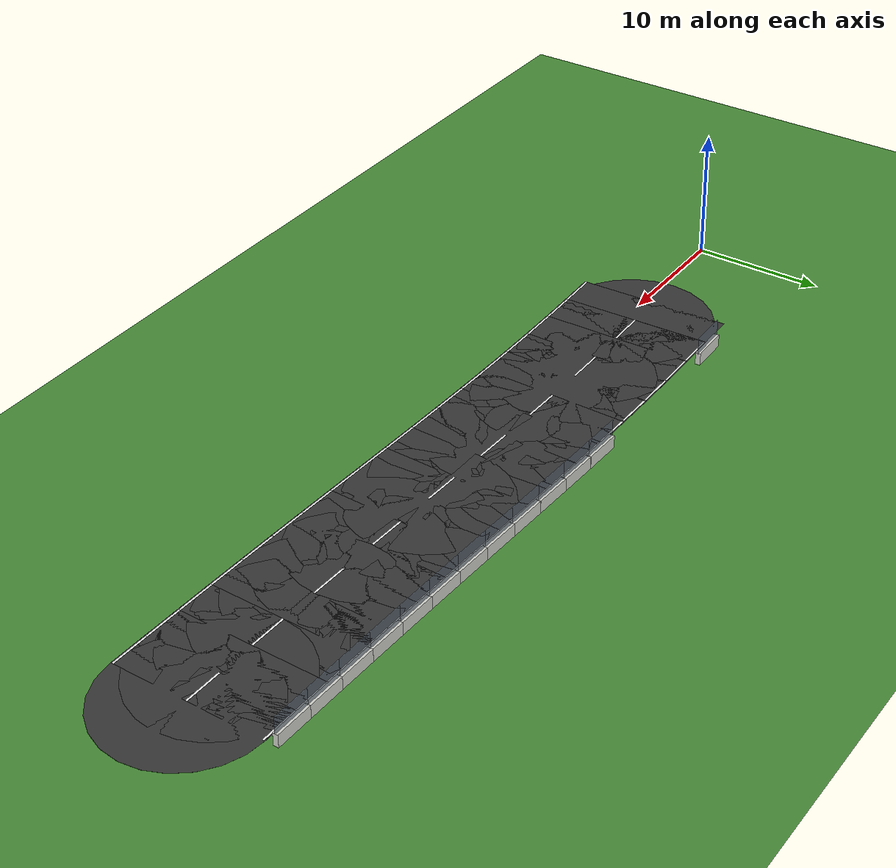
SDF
<sdf version="1.6">
 <world name="sem_silesia_ring_2026">
  <model name="ground_plane">
   <static>true</static>
   <link name="link">
    <collision name="collision">
     <geometry><plane><normal>0 0 1</normal><size>1200 1200</size></plane></geometry>
     <surface><friction><ode><mu>0.6</mu><mu2>0.6</mu2></ode></friction></surface>
    </collision>
    <visual name="visual">
     <geometry><plane><normal>0 0 1</normal><size>1200 1200</size></plane></geometry>
     <material><ambient>0.28 0.55 0.22 1</ambient><diffuse>0.28 0.55 0.22 1</diffuse></material>
    </visual>
   </link>
  </model>
  <model name="road_s3">
   <static>true</static>
   <pose>10.4648 0.7470 0.0030 0 0 0.0366</pose>
   <link name="link">
    <visual name="v">
     <geometry><box><size>3.0025 12.0000 0.0060</size></box></geometry>
     <material><ambient>0.22 0.22 0.22 1</ambient><diffuse>0.22 0.22 0.22 1</diffuse></material>
    </visual>
    <collision name="c">
     <geometry><box><size>3.0025 12.0000 0.0060</size></box></geometry>
     <surface><friction><ode><mu>0.9</mu><mu2>0.9</mu2></ode></friction></surface>
    </collision>
   </link>
  </model>
  <model name="wl_R_s3">
   <static>true</static>
   <pose>10.6787 -5.0991 0.0070 0 0 0.0366</pose>
   <link name="link">
    <visual name="v">
     <geometry><box><size>3.0025 0.1500 0.0080</size></box></geometry>
     <material><ambient>0.95 0.95 0.95 1</ambient><diffuse>0.95 0.95 0.95 1</diffuse></material>
    </visual>
   </link>
  </model>
  <model name="road_s4">
   <static>true</static>
   <pose>13.4657 0.8429 0.0030 0 0 0.0274</pose>
   <link name="link">
    <visual name="v">
     <geometry><box><size>3.0025 12.0000 0.0060</size></box></geometry>
     <material><ambient>0.22 0.22 0.22 1</ambient><diffuse>0.22 0.22 0.22 1</diffuse></material>
    </visual>
    <collision name="c">
     <geometry><box><size>3.0025 12.0000 0.0060</size></box></geometry>
     <surface><friction><ode><mu>0.9</mu><mu2>0.9</mu2></ode></friction></surface>
    </collision>
   </link>
  </model>
  <model name="road_jnt4">
   <static>true</static>
   <pose>11.9650 0.8019 0.0030 0 0 0</pose>
   <link name="link">
    <visual name="v">
     <geometry><cylinder><radius>6.0000</radius><length>0.0060</length></cylinder></geometry>
     <material><ambient>0.22 0.22 0.22 1</ambient><diffuse>0.22 0.22 0.22 1</diffuse></material>
    </visual>
    <collision name="c">
     <geometry><cylinder><radius>6.0000</radius><length>0.0060</length></cylinder></geometry>
     <surface><friction><ode><mu>0.9</mu><mu2>0.9</mu2></ode></friction></surface>
    </collision>
   </link>
  </model>
  <model name="wl_L_s4">
   <static>true</static>
   <pose>13.3056 6.6907 0.0070 0 0 0.0274</pose>
   <link name="link">
    <visual name="v">
     <geometry><box><size>3.0025 0.1500 0.0080</size></box></geometry>
     <material><ambient>0.95 0.95 0.95 1</ambient><diffuse>0.95 0.95 0.95 1</diffuse></material>
    </visual>
   </link>
  </model>
  <model name="wl_R_s4">
   <static>true</static>
   <pose>13.6258 -5.0049 0.0070 0 0 0.0274</pose>
   <link name="link">
    <visual name="v">
     <geometry><box><size>3.0025 0.1500 0.0080</size></box></geometry>
     <material><ambient>0.95 0.95 0.95 1</ambient><diffuse>0.95 0.95 0.95 1</diffuse></material>
    </visual>
   </link>
  </model>
  <model name="cd_s4">
   <static>true</static>
   <pose>13.4657 0.8429 0.0070 0 0 0.0274</pose>
   <link name="link">
    <visual name="v">
     <geometry><box><size>3.0025 0.1500 0.0080</size></box></geometry>
     <material><ambient>0.95 0.95 0.95 1</ambient><diffuse>0.95 0.95 0.95 1</diffuse></material>
    </visual>
   </link>
  </model>
  <model name="road_s5">
   <static>true</static>
   <pose>16.4675 0.9101 0.0030 0 0 0.0174</pose>
   <link name="link">
    <visual name="v">
     <geometry><box><size>3.0025 12.0000 0.0060</size></box></geometry>
     <material><ambient>0.22 0.22 0.22 1</ambient><diffuse>0.22 0.22 0.22 1</diffuse></material>
    </visual>
    <collision name="c">
     <geometry><box><size>3.0025 12.0000 0.0060</size></box></geometry>
     <surface><friction><ode><mu>0.9</mu><mu2>0.9</mu2></ode></friction></surface>
    </collision>
   </link>
  </model>
  <model name="road_jnt5">
   <static>true</static>
   <pose>14.9664 0.8840 0.0030 0 0 0</pose>
   <link name="link">
    <visual name="v">
     <geometry><cylinder><radius>6.0000</radius><length>0.0060</length></cylinder></geometry>
     <material><ambient>0.22 0.22 0.22 1</ambient><diffuse>0.22 0.22 0.22 1</diffuse></material>
    </visual>
    <collision name="c">
     <geometry><cylinder><radius>6.0000</radius><length>0.0060</length></cylinder></geometry>
     <surface><friction><ode><mu>0.9</mu><mu2>0.9</mu2></ode></friction></surface>
    </collision>
   </link>
  </model>
  <model name="wl_L_s5">
   <static>true</static>
   <pose>16.3660 6.7592 0.0070 0 0 0.0174</pose>
   <link name="link">
    <visual name="v">
     <geometry><box><size>3.0025 0.1500 0.0080</size></box></geometry>
     <material><ambient>0.95 0.95 0.95 1</ambient><diffuse>0.95 0.95 0.95 1</diffuse></material>
    </visual>
   </link>
  </model>
  <model name="wl_R_s5">
   <static>true</static>
   <pose>16.5690 -4.9390 0.0070 0 0 0.0174</pose>
   <link name="link">
    <visual name="v">
     <geometry><box><size>3.0025 0.1500 0.0080</size></box></geometry>
     <material><ambient>0.95 0.95 0.95 1</ambient><diffuse>0.95 0.95 0.95 1</diffuse></material>
    </visual>
   </link>
  </model>
  <model name="road_s6">
   <static>true</static>
   <pose>19.4697 0.9459 0.0030 0 0 0.0065</pose>
   <link name="link">
    <visual name="v">
     <geometry><box><size>3.0025 12.0000 0.0060</size></box></geometry>
     <material><ambient>0.22 0.22 0.22 1</ambient><diffuse>0.22 0.22 0.22 1</diffuse></material>
    </visual>
    <collision name="c">
     <geometry><box><size>3.0025 12.0000 0.0060</size></box></geometry>
     <surface><friction><ode><mu>0.9</mu><mu2>0.9</mu2></ode></friction></surface>
    </collision>
   </link>
  </model>
  <model name="road_jnt6">
   <static>true</static>
   <pose>17.9685 0.9361 0.0030 0 0 0</pose>
   <link name="link">
    <visual name="v">
     <geometry><cylinder><radius>6.0000</radius><length>0.0060</length></cylinder></geometry>
     <material><ambient>0.22 0.22 0.22 1</ambient><diffuse>0.22 0.22 0.22 1</diffuse></material>
    </visual>
    <collision name="c">
     <geometry><cylinder><radius>6.0000</radius><length>0.0060</length></cylinder></geometry>
     <surface><friction><ode><mu>0.9</mu><mu2>0.9</mu2></ode></friction></surface>
    </collision>
   </link>
  </model>
  <model name="wl_L_s6">
   <static>true</static>
   <pose>19.4317 6.7958 0.0070 0 0 0.0065</pose>
   <link name="link">
    <visual name="v">
     <geometry><box><size>3.0025 0.1500 0.0080</size></box></geometry>
     <material><ambient>0.95 0.95 0.95 1</ambient><diffuse>0.95 0.95 0.95 1</diffuse></material>
    </visual>
   </link>
  </model>
  <model name="wl_R_s6">
   <static>true</static>
   <pose>19.5078 -4.9040 0.0070 0 0 0.0065</pose>
   <link name="link">
    <visual name="v">
     <geometry><box><size>3.0025 0.1500 0.0080</size></box></geometry>
     <material><ambient>0.95 0.95 0.95 1</ambient><diffuse>0.95 0.95 0.95 1</diffuse></material>
    </visual>
   </link>
  </model>
  <model name="cd_s6">
   <static>true</static>
   <pose>19.4697 0.9459 0.0070 0 0 0.0065</pose>
   <link name="link">
    <visual name="v">
     <geometry><box><size>3.0025 0.1500 0.0080</size></box></geometry>
     <material><ambient>0.95 0.95 0.95 1</ambient><diffuse>0.95 0.95 0.95 1</diffuse></material>
    </visual>
   </link>
  </model>
  <model name="road_s7">
   <static>true</static>
   <pose>22.4722 0.9483 0.0030 0 0 -0.0049</pose>
   <link name="link">
    <visual name="v">
     <geometry><box><size>3.0025 12.0000 0.0060</size></box></geometry>
     <material><ambient>0.22 0.22 0.22 1</ambient><diffuse>0.22 0.22 0.22 1</diffuse></material>
    </visual>
    <collision name="c">
     <geometry><box><size>3.0025 12.0000 0.0060</size></box></geometry>
     <surface><friction><ode><mu>0.9</mu><mu2>0.9</mu2></ode></friction></surface>
    </collision>
   </link>
  </model>
  <model name="road_jnt7">
   <static>true</static>
   <pose>20.9710 0.9557 0.0030 0 0 0</pose>
   <link name="link">
    <visual name="v">
     <geometry><cylinder><radius>6.0000</radius><length>0.0060</length></cylinder></geometry>
     <material><ambient>0.22 0.22 0.22 1</ambient><diffuse>0.22 0.22 0.22 1</diffuse></material>
    </visual>
    <collision name="c">
     <geometry><cylinder><radius>6.0000</radius><length>0.0060</length></cylinder></geometry>
     <surface><friction><ode><mu>0.9</mu><mu2>0.9</mu2></ode></friction></surface>
    </collision>
   </link>
  </model>
  <model name="wl_L_s7">
   <static>true</static>
   <pose>22.5011 6.7982 0.0070 0 0 -0.0049</pose>
   <link name="link">
    <visual name="v">
     <geometry><box><size>3.0025 0.1500 0.0080</size></box></geometry>
     <material><ambient>0.95 0.95 0.95 1</ambient><diffuse>0.95 0.95 0.95 1</diffuse></material>
    </visual>
   </link>
  </model>
  <model name="wl_R_s7">
   <static>true</static>
   <pose>22.4433 -4.9017 0.0070 0 0 -0.0049</pose>
   <link name="link">
    <visual name="v">
     <geometry><box><size>3.0025 0.1500 0.0080</size></box></geometry>
     <material><ambient>0.95 0.95 0.95 1</ambient><diffuse>0.95 0.95 0.95 1</diffuse></material>
    </visual>
   </link>
  </model>
  <model name="road_s8">
   <static>true</static>
   <pose>25.4745 0.9180 0.0030 0 0 -0.0152</pose>
   <link name="link">
    <visual name="v">
     <geometry><box><size>3.0025 12.0000 0.0060</size></box></geometry>
     <material><ambient>0.22 0.22 0.22 1</ambient><diffuse>0.22 0.22 0.22 1</diffuse></material>
    </visual>
    <collision name="c">
     <geometry><box><size>3.0025 12.0000 0.0060</size></box></geometry>
     <surface><friction><ode><mu>0.9</mu><mu2>0.9</mu2></ode></friction></surface>
    </collision>
   </link>
  </model>
  <model name="road_jnt8">
   <static>true</static>
   <pose>23.9734 0.9408 0.0030 0 0 0</pose>
   <link name="link">
    <visual name="v">
     <geometry><cylinder><radius>6.0000</radius><length>0.0060</length></cylinder></geometry>
     <material><ambient>0.22 0.22 0.22 1</ambient><diffuse>0.22 0.22 0.22 1</diffuse></material>
    </visual>
    <collision name="c">
     <geometry><cylinder><radius>6.0000</radius><length>0.0060</length></cylinder></geometry>
     <surface><friction><ode><mu>0.9</mu><mu2>0.9</mu2></ode></friction></surface>
    </collision>
   </link>
  </model>
  <model name="wl_L_s8">
   <static>true</static>
   <pose>25.5634 6.7674 0.0070 0 0 -0.0152</pose>
   <link name="link">
    <visual name="v">
     <geometry><box><size>3.0025 0.1500 0.0080</size></box></geometry>
     <material><ambient>0.95 0.95 0.95 1</ambient><diffuse>0.95 0.95 0.95 1</diffuse></material>
    </visual>
   </link>
  </model>
  <model name="wl_R_s8">
   <static>true</static>
   <pose>25.3857 -4.9313 0.0070 0 0 -0.0152</pose>
   <link name="link">
    <visual name="v">
     <geometry><box><size>3.0025 0.1500 0.0080</size></box></geometry>
     <material><ambient>0.95 0.95 0.95 1</ambient><diffuse>0.95 0.95 0.95 1</diffuse></material>
    </visual>
   </link>
  </model>
  <model name="cd_s8">
   <static>true</static>
   <pose>25.4745 0.9180 0.0070 0 0 -0.0152</pose>
   <link name="link">
    <visual name="v">
     <geometry><box><size>3.0025 0.1500 0.0080</size></box></geometry>
     <material><ambient>0.95 0.95 0.95 1</ambient><diffuse>0.95 0.95 0.95 1</diffuse></material>
    </visual>
   </link>
  </model>
  <model name="road_s9">
   <static>true</static>
   <pose>28.4765 0.8600 0.0030 0 0 -0.0235</pose>
   <link name="link">
    <visual name="v">
     <geometry><box><size>3.0025 12.0000 0.0060</size></box></geometry>
     <material><ambient>0.22 0.22 0.22 1</ambient><diffuse>0.22 0.22 0.22 1</diffuse></material>
    </visual>
    <collision name="c">
     <geometry><box><size>3.0025 12.0000 0.0060</size></box></geometry>
     <surface><friction><ode><mu>0.9</mu><mu2>0.9</mu2></ode></friction></surface>
    </collision>
   </link>
  </model>
  <model name="road_jnt9">
   <static>true</static>
   <pose>26.9756 0.8953 0.0030 0 0 0</pose>
   <link name="link">
    <visual name="v">
     <geometry><cylinder><radius>6.0000</radius><length>0.0060</length></cylinder></geometry>
     <material><ambient>0.22 0.22 0.22 1</ambient><diffuse>0.22 0.22 0.22 1</diffuse></material>
    </visual>
    <collision name="c">
     <geometry><cylinder><radius>6.0000</radius><length>0.0060</length></cylinder></geometry>
     <surface><friction><ode><mu>0.9</mu><mu2>0.9</mu2></ode></friction></surface>
    </collision>
   </link>
  </model>
  <model name="wl_L_s9">
   <static>true</static>
   <pose>28.6138 6.7084 0.0070 0 0 -0.0235</pose>
   <link name="link">
    <visual name="v">
     <geometry><box><size>3.0025 0.1500 0.0080</size></box></geometry>
     <material><ambient>0.95 0.95 0.95 1</ambient><diffuse>0.95 0.95 0.95 1</diffuse></material>
    </visual>
   </link>
  </model>
  <model name="wl_R_s9">
   <static>true</static>
   <pose>28.3391 -4.9884 0.0070 0 0 -0.0235</pose>
   <link name="link">
    <visual name="v">
     <geometry><box><size>3.0025 0.1500 0.0080</size></box></geometry>
     <material><ambient>0.95 0.95 0.95 1</ambient><diffuse>0.95 0.95 0.95 1</diffuse></material>
    </visual>
   </link>
  </model>
  <model name="road_s10">
   <static>true</static>
   <pose>31.4779 0.7800 0.0030 0 0 -0.0298</pose>
   <link name="link">
    <visual name="v">
     <geometry><box><size>3.0025 12.0000 0.0060</size></box></geometry>
     <material><ambient>0.22 0.22 0.22 1</ambient><diffuse>0.22 0.22 0.22 1</diffuse></material>
    </visual>
    <collision name="c">
     <geometry><box><size>3.0025 12.0000 0.0060</size></box></geometry>
     <surface><friction><ode><mu>0.9</mu><mu2>0.9</mu2></ode></friction></surface>
    </collision>
   </link>
  </model>
  <model name="road_jnt10">
   <static>true</static>
   <pose>29.9773 0.8248 0.0030 0 0 0</pose>
   <link name="link">
    <visual name="v">
     <geometry><cylinder><radius>6.0000</radius><length>0.0060</length></cylinder></geometry>
     <material><ambient>0.22 0.22 0.22 1</ambient><diffuse>0.22 0.22 0.22 1</diffuse></material>
    </visual>
    <collision name="c">
     <geometry><cylinder><radius>6.0000</radius><length>0.0060</length></cylinder></geometry>
     <surface><friction><ode><mu>0.9</mu><mu2>0.9</mu2></ode></friction></surface>
    </collision>
   </link>
  </model>
  <model name="wl_L_s10">
   <static>true</static>
   <pose>31.6522 6.6274 0.0070 0 0 -0.0298</pose>
   <link name="link">
    <visual name="v">
     <geometry><box><size>3.0025 0.1500 0.0080</size></box></geometry>
     <material><ambient>0.95 0.95 0.95 1</ambient><diffuse>0.95 0.95 0.95 1</diffuse></material>
    </visual>
   </link>
  </model>
  <model name="wl_R_s10">
   <static>true</static>
   <pose>31.3036 -5.0674 0.0070 0 0 -0.0298</pose>
   <link name="link">
    <visual name="v">
     <geometry><box><size>3.0025 0.1500 0.0080</size></box></geometry>
     <material><ambient>0.95 0.95 0.95 1</ambient><diffuse>0.95 0.95 0.95 1</diffuse></material>
    </visual>
   </link>
  </model>
  <model name="cd_s10">
   <static>true</static>
   <pose>31.4779 0.7800 0.0070 0 0 -0.0298</pose>
   <link name="link">
    <visual name="v">
     <geometry><box><size>3.0025 0.1500 0.0080</size></box></geometry>
     <material><ambient>0.95 0.95 0.95 1</ambient><diffuse>0.95 0.95 0.95 1</diffuse></material>
    </visual>
   </link>
  </model>
  <model name="road_s11">
   <static>true</static>
   <pose>34.4789 0.6841 0.0030 0 0 -0.0341</pose>
   <link name="link">
    <visual name="v">
     <geometry><box><size>3.0025 12.0000 0.0060</size></box></geometry>
     <material><ambient>0.22 0.22 0.22 1</ambient><diffuse>0.22 0.22 0.22 1</diffuse></material>
    </visual>
    <collision name="c">
     <geometry><box><size>3.0025 12.0000 0.0060</size></box></geometry>
     <surface><friction><ode><mu>0.9</mu><mu2>0.9</mu2></ode></friction></surface>
    </collision>
   </link>
  </model>
  <model name="road_jnt11">
   <static>true</static>
   <pose>32.9785 0.7353 0.0030 0 0 0</pose>
   <link name="link">
    <visual name="v">
     <geometry><cylinder><radius>6.0000</radius><length>0.0060</length></cylinder></geometry>
     <material><ambient>0.22 0.22 0.22 1</ambient><diffuse>0.22 0.22 0.22 1</diffuse></material>
    </visual>
    <collision name="c">
     <geometry><cylinder><radius>6.0000</radius><length>0.0060</length></cylinder></geometry>
     <surface><friction><ode><mu>0.9</mu><mu2>0.9</mu2></ode></friction></surface>
    </collision>
   </link>
  </model>
  <model name="wl_L_s11">
   <static>true</static>
   <pose>34.6785 6.5307 0.0070 0 0 -0.0341</pose>
   <link name="link">
    <visual name="v">
     <geometry><box><size>3.0025 0.1500 0.0080</size></box></geometry>
     <material><ambient>0.95 0.95 0.95 1</ambient><diffuse>0.95 0.95 0.95 1</diffuse></material>
    </visual>
   </link>
  </model>
  <model name="wl_R_s11">
   <static>true</static>
   <pose>34.2794 -5.1625 0.0070 0 0 -0.0341</pose>
   <link name="link">
    <visual name="v">
     <geometry><box><size>3.0025 0.1500 0.0080</size></box></geometry>
     <material><ambient>0.95 0.95 0.95 1</ambient><diffuse>0.95 0.95 0.95 1</diffuse></material>
    </visual>
   </link>
  </model>
  <model name="road_s12">
   <static>true</static>
   <pose>37.4796 0.5782 0.0030 0 0 -0.0365</pose>
   <link name="link">
    <visual name="v">
     <geometry><box><size>3.0025 12.0000 0.0060</size></box></geometry>
     <material><ambient>0.22 0.22 0.22 1</ambient><diffuse>0.22 0.22 0.22 1</diffuse></material>
    </visual>
    <collision name="c">
     <geometry><box><size>3.0025 12.0000 0.0060</size></box></geometry>
     <surface><friction><ode><mu>0.9</mu><mu2>0.9</mu2></ode></friction></surface>
    </collision>
   </link>
  </model>
  <model name="road_jnt12">
   <static>true</static>
   <pose>35.9793 0.6329 0.0030 0 0 0</pose>
   <link name="link">
    <visual name="v">
     <geometry><cylinder><radius>6.0000</radius><length>0.0060</length></cylinder></geometry>
     <material><ambient>0.22 0.22 0.22 1</ambient><diffuse>0.22 0.22 0.22 1</diffuse></material>
    </visual>
    <collision name="c">
     <geometry><cylinder><radius>6.0000</radius><length>0.0060</length></cylinder></geometry>
     <surface><friction><ode><mu>0.9</mu><mu2>0.9</mu2></ode></friction></surface>
    </collision>
   </link>
  </model>
  <model name="wl_L_s12">
   <static>true</static>
   <pose>37.6928 6.4243 0.0070 0 0 -0.0365</pose>
   <link name="link">
    <visual name="v">
     <geometry><box><size>3.0025 0.1500 0.0080</size></box></geometry>
     <material><ambient>0.95 0.95 0.95 1</ambient><diffuse>0.95 0.95 0.95 1</diffuse></material>
    </visual>
   </link>
  </model>
  <model name="wl_R_s12">
   <static>true</static>
   <pose>37.2664 -5.2680 0.0070 0 0 -0.0365</pose>
   <link name="link">
    <visual name="v">
     <geometry><box><size>3.0025 0.1500 0.0080</size></box></geometry>
     <material><ambient>0.95 0.95 0.95 1</ambient><diffuse>0.95 0.95 0.95 1</diffuse></material>
    </visual>
   </link>
  </model>
  <model name="cd_s12">
   <static>true</static>
   <pose>37.4796 0.5782 0.0070 0 0 -0.0365</pose>
   <link name="link">
    <visual name="v">
     <geometry><box><size>3.0025 0.1500 0.0080</size></box></geometry>
     <material><ambient>0.95 0.95 0.95 1</ambient><diffuse>0.95 0.95 0.95 1</diffuse></material>
    </visual>
   </link>
  </model>
  <model name="road_s13">
   <static>true</static>
   <pose>40.4801 0.4682 0.0030 0 0 -0.0368</pose>
   <link name="link">
    <visual name="v">
     <geometry><box><size>3.0025 12.0000 0.0060</size></box></geometry>
     <material><ambient>0.22 0.22 0.22 1</ambient><diffuse>0.22 0.22 0.22 1</diffuse></material>
    </visual>
    <collision name="c">
     <geometry><box><size>3.0025 12.0000 0.0060</size></box></geometry>
     <surface><friction><ode><mu>0.9</mu><mu2>0.9</mu2></ode></friction></surface>
    </collision>
   </link>
  </model>
  <model name="road_jnt13">
   <static>true</static>
   <pose>38.9799 0.5234 0.0030 0 0 0</pose>
   <link name="link">
    <visual name="v">
     <geometry><cylinder><radius>6.0000</radius><length>0.0060</length></cylinder></geometry>
     <material><ambient>0.22 0.22 0.22 1</ambient><diffuse>0.22 0.22 0.22 1</diffuse></material>
    </visual>
    <collision name="c">
     <geometry><cylinder><radius>6.0000</radius><length>0.0060</length></cylinder></geometry>
     <surface><friction><ode><mu>0.9</mu><mu2>0.9</mu2></ode></friction></surface>
    </collision>
   </link>
  </model>
  <model name="wl_L_s13">
   <static>true</static>
   <pose>40.6954 6.3142 0.0070 0 0 -0.0368</pose>
   <link name="link">
    <visual name="v">
     <geometry><box><size>3.0025 0.1500 0.0080</size></box></geometry>
     <material><ambient>0.95 0.95 0.95 1</ambient><diffuse>0.95 0.95 0.95 1</diffuse></material>
    </visual>
   </link>
  </model>
  <model name="wl_R_s13">
   <static>true</static>
   <pose>40.2648 -5.3778 0.0070 0 0 -0.0368</pose>
   <link name="link">
    <visual name="v">
     <geometry><box><size>3.0025 0.1500 0.0080</size></box></geometry>
     <material><ambient>0.95 0.95 0.95 1</ambient><diffuse>0.95 0.95 0.95 1</diffuse></material>
    </visual>
   </link>
  </model>
  <model name="road_s14">
   <static>true</static>
   <pose>43.4807 0.3602 0.0030 0 0 -0.0352</pose>
   <link name="link">
    <visual name="v">
     <geometry><box><size>3.0025 12.0000 0.0060</size></box></geometry>
     <material><ambient>0.22 0.22 0.22 1</ambient><diffuse>0.22 0.22 0.22 1</diffuse></material>
    </visual>
    <collision name="c">
     <geometry><box><size>3.0025 12.0000 0.0060</size></box></geometry>
     <surface><friction><ode><mu>0.9</mu><mu2>0.9</mu2></ode></friction></surface>
    </collision>
   </link>
  </model>
  <model name="road_jnt14">
   <static>true</static>
   <pose>41.9804 0.4130 0.0030 0 0 0</pose>
   <link name="link">
    <visual name="v">
     <geometry><cylinder><radius>6.0000</radius><length>0.0060</length></cylinder></geometry>
     <material><ambient>0.22 0.22 0.22 1</ambient><diffuse>0.22 0.22 0.22 1</diffuse></material>
    </visual>
    <collision name="c">
     <geometry><cylinder><radius>6.0000</radius><length>0.0060</length></cylinder></geometry>
     <surface><friction><ode><mu>0.9</mu><mu2>0.9</mu2></ode></friction></surface>
    </collision>
   </link>
  </model>
  <model name="wl_L_s14">
   <static>true</static>
   <pose>43.6865 6.2065 0.0070 0 0 -0.0352</pose>
   <link name="link">
    <visual name="v">
     <geometry><box><size>3.0025 0.1500 0.0080</size></box></geometry>
     <material><ambient>0.95 0.95 0.95 1</ambient><diffuse>0.95 0.95 0.95 1</diffuse></material>
    </visual>
   </link>
  </model>
  <model name="wl_R_s14">
   <static>true</static>
   <pose>43.2749 -5.4862 0.0070 0 0 -0.0352</pose>
   <link name="link">
    <visual name="v">
     <geometry><box><size>3.0025 0.1500 0.0080</size></box></geometry>
     <material><ambient>0.95 0.95 0.95 1</ambient><diffuse>0.95 0.95 0.95 1</diffuse></material>
    </visual>
   </link>
  </model>
  <model name="cd_s14">
   <static>true</static>
   <pose>43.4807 0.3602 0.0070 0 0 -0.0352</pose>
   <link name="link">
    <visual name="v">
     <geometry><box><size>3.0025 0.1500 0.0080</size></box></geometry>
     <material><ambient>0.95 0.95 0.95 1</ambient><diffuse>0.95 0.95 0.95 1</diffuse></material>
    </visual>
   </link>
  </model>
  <model name="road_s15">
   <static>true</static>
   <pose>46.4815 0.2595 0.0030 0 0 -0.0319</pose>
   <link name="link">
    <visual name="v">
     <geometry><box><size>3.0025 12.0000 0.0060</size></box></geometry>
     <material><ambient>0.22 0.22 0.22 1</ambient><diffuse>0.22 0.22 0.22 1</diffuse></material>
    </visual>
    <collision name="c">
     <geometry><box><size>3.0025 12.0000 0.0060</size></box></geometry>
     <surface><friction><ode><mu>0.9</mu><mu2>0.9</mu2></ode></friction></surface>
    </collision>
   </link>
  </model>
  <model name="road_jnt15">
   <static>true</static>
   <pose>44.9810 0.3073 0.0030 0 0 0</pose>
   <link name="link">
    <visual name="v">
     <geometry><cylinder><radius>6.0000</radius><length>0.0060</length></cylinder></geometry>
     <material><ambient>0.22 0.22 0.22 1</ambient><diffuse>0.22 0.22 0.22 1</diffuse></material>
    </visual>
    <collision name="c">
     <geometry><cylinder><radius>6.0000</radius><length>0.0060</length></cylinder></geometry>
     <surface><friction><ode><mu>0.9</mu><mu2>0.9</mu2></ode></friction></surface>
    </collision>
   </link>
  </model>
  <model name="wl_L_s15">
   <static>true</static>
   <pose>46.6679 6.1066 0.0070 0 0 -0.0319</pose>
   <link name="link">
    <visual name="v">
     <geometry><box><size>3.0025 0.1500 0.0080</size></box></geometry>
     <material><ambient>0.95 0.95 0.95 1</ambient><diffuse>0.95 0.95 0.95 1</diffuse></material>
    </visual>
   </link>
  </model>
  <model name="wl_R_s15">
   <static>true</static>
   <pose>46.2952 -5.5875 0.0070 0 0 -0.0319</pose>
   <link name="link">
    <visual name="v">
     <geometry><box><size>3.0025 0.1500 0.0080</size></box></geometry>
     <material><ambient>0.95 0.95 0.95 1</ambient><diffuse>0.95 0.95 0.95 1</diffuse></material>
    </visual>
   </link>
  </model>
  <model name="road_s16">
   <static>true</static>
   <pose>49.4827 0.1691 0.0030 0 0 -0.0284</pose>
   <link name="link">
    <visual name="v">
     <geometry><box><size>3.0025 12.0000 0.0060</size></box></geometry>
     <material><ambient>0.22 0.22 0.22 1</ambient><diffuse>0.22 0.22 0.22 1</diffuse></material>
    </visual>
    <collision name="c">
     <geometry><box><size>3.0025 12.0000 0.0060</size></box></geometry>
     <surface><friction><ode><mu>0.9</mu><mu2>0.9</mu2></ode></friction></surface>
    </collision>
   </link>
  </model>
  <model name="road_jnt16">
   <static>true</static>
   <pose>47.9820 0.2117 0.0030 0 0 0</pose>
   <link name="link">
    <visual name="v">
     <geometry><cylinder><radius>6.0000</radius><length>0.0060</length></cylinder></geometry>
     <material><ambient>0.22 0.22 0.22 1</ambient><diffuse>0.22 0.22 0.22 1</diffuse></material>
    </visual>
    <collision name="c">
     <geometry><cylinder><radius>6.0000</radius><length>0.0060</length></cylinder></geometry>
     <surface><friction><ode><mu>0.9</mu><mu2>0.9</mu2></ode></friction></surface>
    </collision>
   </link>
  </model>
  <model name="wl_L_s16">
   <static>true</static>
   <pose>49.6488 6.0167 0.0070 0 0 -0.0284</pose>
   <link name="link">
    <visual name="v">
     <geometry><box><size>3.0025 0.1500 0.0080</size></box></geometry>
     <material><ambient>0.95 0.95 0.95 1</ambient><diffuse>0.95 0.95 0.95 1</diffuse></material>
    </visual>
   </link>
  </model>
  <model name="wl_R_s16">
   <static>true</static>
   <pose>49.3167 -5.6786 0.0070 0 0 -0.0284</pose>
   <link name="link">
    <visual name="v">
     <geometry><box><size>3.0025 0.1500 0.0080</size></box></geometry>
     <material><ambient>0.95 0.95 0.95 1</ambient><diffuse>0.95 0.95 0.95 1</diffuse></material>
    </visual>
   </link>
  </model>
  <model name="cd_s16">
   <static>true</static>
   <pose>49.4827 0.1691 0.0070 0 0 -0.0284</pose>
   <link name="link">
    <visual name="v">
     <geometry><box><size>3.0025 0.1500 0.0080</size></box></geometry>
     <material><ambient>0.95 0.95 0.95 1</ambient><diffuse>0.95 0.95 0.95 1</diffuse></material>
    </visual>
   </link>
  </model>
  <model name="road_s17">
   <static>true</static>
   <pose>52.4842 0.0885 0.0030 0 0 -0.0253</pose>
   <link name="link">
    <visual name="v">
     <geometry><box><size>3.0025 12.0000 0.0060</size></box></geometry>
     <material><ambient>0.22 0.22 0.22 1</ambient><diffuse>0.22 0.22 0.22 1</diffuse></material>
    </visual>
    <collision name="c">
     <geometry><box><size>3.0025 12.0000 0.0060</size></box></geometry>
     <surface><friction><ode><mu>0.9</mu><mu2>0.9</mu2></ode></friction></surface>
    </collision>
   </link>
  </model>
  <model name="road_jnt17">
   <static>true</static>
   <pose>50.9834 0.1265 0.0030 0 0 0</pose>
   <link name="link">
    <visual name="v">
     <geometry><cylinder><radius>6.0000</radius><length>0.0060</length></cylinder></geometry>
     <material><ambient>0.22 0.22 0.22 1</ambient><diffuse>0.22 0.22 0.22 1</diffuse></material>
    </visual>
    <collision name="c">
     <geometry><cylinder><radius>6.0000</radius><length>0.0060</length></cylinder></geometry>
     <surface><friction><ode><mu>0.9</mu><mu2>0.9</mu2></ode></friction></surface>
    </collision>
   </link>
  </model>
  <model name="wl_L_s17">
   <static>true</static>
   <pose>52.6322 5.9366 0.0070 0 0 -0.0253</pose>
   <link name="link">
    <visual name="v">
     <geometry><box><size>3.0025 0.1500 0.0080</size></box></geometry>
     <material><ambient>0.95 0.95 0.95 1</ambient><diffuse>0.95 0.95 0.95 1</diffuse></material>
    </visual>
   </link>
  </model>
  <model name="wl_R_s17">
   <static>true</static>
   <pose>52.3361 -5.7597 0.0070 0 0 -0.0253</pose>
   <link name="link">
    <visual name="v">
     <geometry><box><size>3.0025 0.1500 0.0080</size></box></geometry>
     <material><ambient>0.95 0.95 0.95 1</ambient><diffuse>0.95 0.95 0.95 1</diffuse></material>
    </visual>
   </link>
  </model>
  <model name="road_s18">
   <static>true</static>
   <pose>55.4858 0.0165 0.0030 0 0 -0.0226</pose>
   <link name="link">
    <visual name="v">
     <geometry><box><size>3.0025 12.0000 0.0060</size></box></geometry>
     <material><ambient>0.22 0.22 0.22 1</ambient><diffuse>0.22 0.22 0.22 1</diffuse></material>
    </visual>
    <collision name="c">
     <geometry><box><size>3.0025 12.0000 0.0060</size></box></geometry>
     <surface><friction><ode><mu>0.9</mu><mu2>0.9</mu2></ode></friction></surface>
    </collision>
   </link>
  </model>
  <model name="road_jnt18">
   <static>true</static>
   <pose>53.9849 0.0505 0.0030 0 0 0</pose>
   <link name="link">
    <visual name="v">
     <geometry><cylinder><radius>6.0000</radius><length>0.0060</length></cylinder></geometry>
     <material><ambient>0.22 0.22 0.22 1</ambient><diffuse>0.22 0.22 0.22 1</diffuse></material>
    </visual>
    <collision name="c">
     <geometry><cylinder><radius>6.0000</radius><length>0.0060</length></cylinder></geometry>
     <surface><friction><ode><mu>0.9</mu><mu2>0.9</mu2></ode></friction></surface>
    </collision>
   </link>
  </model>
  <model name="wl_L_s18">
   <static>true</static>
   <pose>55.6182 5.8650 0.0070 0 0 -0.0226</pose>
   <link name="link">
    <visual name="v">
     <geometry><box><size>3.0025 0.1500 0.0080</size></box></geometry>
     <material><ambient>0.95 0.95 0.95 1</ambient><diffuse>0.95 0.95 0.95 1</diffuse></material>
    </visual>
   </link>
  </model>
  <model name="wl_R_s18">
   <static>true</static>
   <pose>55.3534 -5.8320 0.0070 0 0 -0.0226</pose>
   <link name="link">
    <visual name="v">
     <geometry><box><size>3.0025 0.1500 0.0080</size></box></geometry>
     <material><ambient>0.95 0.95 0.95 1</ambient><diffuse>0.95 0.95 0.95 1</diffuse></material>
    </visual>
   </link>
  </model>
  <model name="cd_s18">
   <static>true</static>
   <pose>55.4858 0.0165 0.0070 0 0 -0.0226</pose>
   <link name="link">
    <visual name="v">
     <geometry><box><size>3.0025 0.1500 0.0080</size></box></geometry>
     <material><ambient>0.95 0.95 0.95 1</ambient><diffuse>0.95 0.95 0.95 1</diffuse></material>
    </visual>
   </link>
  </model>
  <model name="road_s19">
   <static>true</static>
   <pose>58.4877 -0.0480 0.0030 0 0 -0.0203</pose>
   <link name="link">
    <visual name="v">
     <geometry><box><size>3.0025 12.0000 0.0060</size></box></geometry>
     <material><ambient>0.22 0.22 0.22 1</ambient><diffuse>0.22 0.22 0.22 1</diffuse></material>
    </visual>
    <collision name="c">
     <geometry><box><size>3.0025 12.0000 0.0060</size></box></geometry>
     <surface><friction><ode><mu>0.9</mu><mu2>0.9</mu2></ode></friction></surface>
    </collision>
   </link>
  </model>
  <model name="road_jnt19">
   <static>true</static>
   <pose>56.9867 -0.0175 0.0030 0 0 0</pose>
   <link name="link">
    <visual name="v">
     <geometry><cylinder><radius>6.0000</radius><length>0.0060</length></cylinder></geometry>
     <material><ambient>0.22 0.22 0.22 1</ambient><diffuse>0.22 0.22 0.22 1</diffuse></material>
    </visual>
    <collision name="c">
     <geometry><cylinder><radius>6.0000</radius><length>0.0060</length></cylinder></geometry>
     <surface><friction><ode><mu>0.9</mu><mu2>0.9</mu2></ode></friction></surface>
    </collision>
   </link>
  </model>
  <model name="wl_L_s19">
   <static>true</static>
   <pose>58.6067 5.8008 0.0070 0 0 -0.0203</pose>
   <link name="link">
    <visual name="v">
     <geometry><box><size>3.0025 0.1500 0.0080</size></box></geometry>
     <material><ambient>0.95 0.95 0.95 1</ambient><diffuse>0.95 0.95 0.95 1</diffuse></material>
    </visual>
   </link>
  </model>
  <model name="wl_R_s19">
   <static>true</static>
   <pose>58.3687 -5.8968 0.0070 0 0 -0.0203</pose>
   <link name="link">
    <visual name="v">
     <geometry><box><size>3.0025 0.1500 0.0080</size></box></geometry>
     <material><ambient>0.95 0.95 0.95 1</ambient><diffuse>0.95 0.95 0.95 1</diffuse></material>
    </visual>
   </link>
  </model>
  <model name="road_s20">
   <static>true</static>
   <pose>61.4896 -0.1063 0.0030 0 0 -0.0184</pose>
   <link name="link">
    <visual name="v">
     <geometry><box><size>3.0025 12.0000 0.0060</size></box></geometry>
     <material><ambient>0.22 0.22 0.22 1</ambient><diffuse>0.22 0.22 0.22 1</diffuse></material>
    </visual>
    <collision name="c">
     <geometry><box><size>3.0025 12.0000 0.0060</size></box></geometry>
     <surface><friction><ode><mu>0.9</mu><mu2>0.9</mu2></ode></friction></surface>
    </collision>
   </link>
  </model>
  <model name="road_jnt20">
   <static>true</static>
   <pose>59.9886 -0.0786 0.0030 0 0 0</pose>
   <link name="link">
    <visual name="v">
     <geometry><cylinder><radius>6.0000</radius><length>0.0060</length></cylinder></geometry>
     <material><ambient>0.22 0.22 0.22 1</ambient><diffuse>0.22 0.22 0.22 1</diffuse></material>
    </visual>
    <collision name="c">
     <geometry><cylinder><radius>6.0000</radius><length>0.0060</length></cylinder></geometry>
     <surface><friction><ode><mu>0.9</mu><mu2>0.9</mu2></ode></friction></surface>
    </collision>
   </link>
  </model>
  <model name="wl_L_s20">
   <static>true</static>
   <pose>61.5975 5.7427 0.0070 0 0 -0.0184</pose>
   <link name="link">
    <visual name="v">
     <geometry><box><size>3.0025 0.1500 0.0080</size></box></geometry>
     <material><ambient>0.95 0.95 0.95 1</ambient><diffuse>0.95 0.95 0.95 1</diffuse></material>
    </visual>
   </link>
  </model>
  <model name="wl_R_s20">
   <static>true</static>
   <pose>61.3818 -5.9553 0.0070 0 0 -0.0184</pose>
   <link name="link">
    <visual name="v">
     <geometry><box><size>3.0025 0.1500 0.0080</size></box></geometry>
     <material><ambient>0.95 0.95 0.95 1</ambient><diffuse>0.95 0.95 0.95 1</diffuse></material>
    </visual>
   </link>
  </model>
  <model name="cd_s20">
   <static>true</static>
   <pose>61.4896 -0.1063 0.0070 0 0 -0.0184</pose>
   <link name="link">
    <visual name="v">
     <geometry><box><size>3.0025 0.1500 0.0080</size></box></geometry>
     <material><ambient>0.95 0.95 0.95 1</ambient><diffuse>0.95 0.95 0.95 1</diffuse></material>
    </visual>
   </link>
  </model>
  <model name="road_jnt21">
   <static>true</static>
   <pose>62.9907 -0.1339 0.0030 0 0 0</pose>
   <link name="link">
    <visual name="v">
     <geometry><cylinder><radius>6.0000</radius><length>0.0060</length></cylinder></geometry>
     <material><ambient>0.22 0.22 0.22 1</ambient><diffuse>0.22 0.22 0.22 1</diffuse></material>
    </visual>
    <collision name="c">
     <geometry><cylinder><radius>6.0000</radius><length>0.0060</length></cylinder></geometry>
     <surface><friction><ode><mu>0.9</mu><mu2>0.9</mu2></ode></friction></surface>
    </collision>
   </link>
  </model>
  <model name="pit_wall_4">
   <static>true</static>
   <pose>13.2796 7.6404 0.5000 0 0 0.0274</pose>
   <link name="link">
    <visual name="v">
     <geometry><box><size>3.0025 0.4000 1.0000</size></box></geometry>
     <material><ambient>0.82 0.82 0.80 1</ambient><diffuse>0.82 0.82 0.80 1</diffuse></material>
    </visual>
    <visual name="fence">
     <pose>0 0 1.0 0 0 0</pose>
     <geometry><box><size>3.0025 0.0500 1.5000</size></box></geometry>
     <material><ambient>0.40 0.45 0.50 0.7</ambient><diffuse>0.40 0.45 0.50 0.7</diffuse></material>
    </visual>
    <collision name="c">
     <geometry><box><size>3.0025 0.4000 1.0000</size></box></geometry>
     <surface><friction><ode><mu>0.9</mu><mu2>0.9</mu2></ode></friction></surface>
    </collision>
   </link>
  </model>
  <model name="pit_wall_9">
   <static>true</static>
   <pose>28.6361 7.6581 0.5000 0 0 -0.0235</pose>
   <link name="link">
    <visual name="v">
     <geometry><box><size>3.0025 0.4000 1.0000</size></box></geometry>
     <material><ambient>0.82 0.82 0.80 1</ambient><diffuse>0.82 0.82 0.80 1</diffuse></material>
    </visual>
    <visual name="fence">
     <pose>0 0 1.0 0 0 0</pose>
     <geometry><box><size>3.0025 0.0500 1.5000</size></box></geometry>
     <material><ambient>0.40 0.45 0.50 0.7</ambient><diffuse>0.40 0.45 0.50 0.7</diffuse></material>
    </visual>
    <collision name="c">
     <geometry><box><size>3.0025 0.4000 1.0000</size></box></geometry>
     <surface><friction><ode><mu>0.9</mu><mu2>0.9</mu2></ode></friction></surface>
    </collision>
   </link>
  </model>
  <model name="pit_wall_10">
   <static>true</static>
   <pose>31.6805 7.5770 0.5000 0 0 -0.0298</pose>
   <link name="link">
    <visual name="v">
     <geometry><box><size>3.0025 0.4000 1.0000</size></box></geometry>
     <material><ambient>0.82 0.82 0.80 1</ambient><diffuse>0.82 0.82 0.80 1</diffuse></material>
    </visual>
    <visual name="fence">
     <pose>0 0 1.0 0 0 0</pose>
     <geometry><box><size>3.0025 0.0500 1.5000</size></box></geometry>
     <material><ambient>0.40 0.45 0.50 0.7</ambient><diffuse>0.40 0.45 0.50 0.7</diffuse></material>
    </visual>
    <collision name="c">
     <geometry><box><size>3.0025 0.4000 1.0000</size></box></geometry>
     <surface><friction><ode><mu>0.9</mu><mu2>0.9</mu2></ode></friction></surface>
    </collision>
   </link>
  </model>
  <model name="pit_wall_11">
   <static>true</static>
   <pose>34.7109 7.4801 0.5000 0 0 -0.0341</pose>
   <link name="link">
    <visual name="v">
     <geometry><box><size>3.0025 0.4000 1.0000</size></box></geometry>
     <material><ambient>0.82 0.82 0.80 1</ambient><diffuse>0.82 0.82 0.80 1</diffuse></material>
    </visual>
    <visual name="fence">
     <pose>0 0 1.0 0 0 0</pose>
     <geometry><box><size>3.0025 0.0500 1.5000</size></box></geometry>
     <material><ambient>0.40 0.45 0.50 0.7</ambient><diffuse>0.40 0.45 0.50 0.7</diffuse></material>
    </visual>
    <collision name="c">
     <geometry><box><size>3.0025 0.4000 1.0000</size></box></geometry>
     <surface><friction><ode><mu>0.9</mu><mu2>0.9</mu2></ode></friction></surface>
    </collision>
   </link>
  </model>
  <model name="pit_wall_12">
   <static>true</static>
   <pose>37.7274 7.3736 0.5000 0 0 -0.0365</pose>
   <link name="link">
    <visual name="v">
     <geometry><box><size>3.0025 0.4000 1.0000</size></box></geometry>
     <material><ambient>0.82 0.82 0.80 1</ambient><diffuse>0.82 0.82 0.80 1</diffuse></material>
    </visual>
    <visual name="fence">
     <pose>0 0 1.0 0 0 0</pose>
     <geometry><box><size>3.0025 0.0500 1.5000</size></box></geometry>
     <material><ambient>0.40 0.45 0.50 0.7</ambient><diffuse>0.40 0.45 0.50 0.7</diffuse></material>
    </visual>
    <collision name="c">
     <geometry><box><size>3.0025 0.4000 1.0000</size></box></geometry>
     <surface><friction><ode><mu>0.9</mu><mu2>0.9</mu2></ode></friction></surface>
    </collision>
   </link>
  </model>
  <model name="pit_wall_13">
   <static>true</static>
   <pose>40.7303 7.2636 0.5000 0 0 -0.0368</pose>
   <link name="link">
    <visual name="v">
     <geometry><box><size>3.0025 0.4000 1.0000</size></box></geometry>
     <material><ambient>0.82 0.82 0.80 1</ambient><diffuse>0.82 0.82 0.80 1</diffuse></material>
    </visual>
    <visual name="fence">
     <pose>0 0 1.0 0 0 0</pose>
     <geometry><box><size>3.0025 0.0500 1.5000</size></box></geometry>
     <material><ambient>0.40 0.45 0.50 0.7</ambient><diffuse>0.40 0.45 0.50 0.7</diffuse></material>
    </visual>
    <collision name="c">
     <geometry><box><size>3.0025 0.4000 1.0000</size></box></geometry>
     <surface><friction><ode><mu>0.9</mu><mu2>0.9</mu2></ode></friction></surface>
    </collision>
   </link>
  </model>
  <model name="pit_wall_14">
   <static>true</static>
   <pose>43.7199 7.1559 0.5000 0 0 -0.0352</pose>
   <link name="link">
    <visual name="v">
     <geometry><box><size>3.0025 0.4000 1.0000</size></box></geometry>
     <material><ambient>0.82 0.82 0.80 1</ambient><diffuse>0.82 0.82 0.80 1</diffuse></material>
    </visual>
    <visual name="fence">
     <pose>0 0 1.0 0 0 0</pose>
     <geometry><box><size>3.0025 0.0500 1.5000</size></box></geometry>
     <material><ambient>0.40 0.45 0.50 0.7</ambient><diffuse>0.40 0.45 0.50 0.7</diffuse></material>
    </visual>
    <collision name="c">
     <geometry><box><size>3.0025 0.4000 1.0000</size></box></geometry>
     <surface><friction><ode><mu>0.9</mu><mu2>0.9</mu2></ode></friction></surface>
    </collision>
   </link>
  </model>
  <model name="pit_wall_15">
   <static>true</static>
   <pose>46.6981 7.0561 0.5000 0 0 -0.0319</pose>
   <link name="link">
    <visual name="v">
     <geometry><box><size>3.0025 0.4000 1.0000</size></box></geometry>
     <material><ambient>0.82 0.82 0.80 1</ambient><diffuse>0.82 0.82 0.80 1</diffuse></material>
    </visual>
    <visual name="fence">
     <pose>0 0 1.0 0 0 0</pose>
     <geometry><box><size>3.0025 0.0500 1.5000</size></box></geometry>
     <material><ambient>0.40 0.45 0.50 0.7</ambient><diffuse>0.40 0.45 0.50 0.7</diffuse></material>
    </visual>
    <collision name="c">
     <geometry><box><size>3.0025 0.4000 1.0000</size></box></geometry>
     <surface><friction><ode><mu>0.9</mu><mu2>0.9</mu2></ode></friction></surface>
    </collision>
   </link>
  </model>
  <model name="pit_wall_16">
   <static>true</static>
   <pose>49.6757 6.9664 0.5000 0 0 -0.0284</pose>
   <link name="link">
    <visual name="v">
     <geometry><box><size>3.0025 0.4000 1.0000</size></box></geometry>
     <material><ambient>0.82 0.82 0.80 1</ambient><diffuse>0.82 0.82 0.80 1</diffuse></material>
    </visual>
    <visual name="fence">
     <pose>0 0 1.0 0 0 0</pose>
     <geometry><box><size>3.0025 0.0500 1.5000</size></box></geometry>
     <material><ambient>0.40 0.45 0.50 0.7</ambient><diffuse>0.40 0.45 0.50 0.7</diffuse></material>
    </visual>
    <collision name="c">
     <geometry><box><size>3.0025 0.4000 1.0000</size></box></geometry>
     <surface><friction><ode><mu>0.9</mu><mu2>0.9</mu2></ode></friction></surface>
    </collision>
   </link>
  </model>
  <model name="pit_wall_17">
   <static>true</static>
   <pose>52.6563 6.8863 0.5000 0 0 -0.0253</pose>
   <link name="link">
    <visual name="v">
     <geometry><box><size>3.0025 0.4000 1.0000</size></box></geometry>
     <material><ambient>0.82 0.82 0.80 1</ambient><diffuse>0.82 0.82 0.80 1</diffuse></material>
    </visual>
    <visual name="fence">
     <pose>0 0 1.0 0 0 0</pose>
     <geometry><box><size>3.0025 0.0500 1.5000</size></box></geometry>
     <material><ambient>0.40 0.45 0.50 0.7</ambient><diffuse>0.40 0.45 0.50 0.7</diffuse></material>
    </visual>
    <collision name="c">
     <geometry><box><size>3.0025 0.4000 1.0000</size></box></geometry>
     <surface><friction><ode><mu>0.9</mu><mu2>0.9</mu2></ode></friction></surface>
    </collision>
   </link>
  </model>
  <model name="pit_wall_18">
   <static>true</static>
   <pose>55.6398 6.8147 0.5000 0 0 -0.0226</pose>
   <link name="link">
    <visual name="v">
     <geometry><box><size>3.0025 0.4000 1.0000</size></box></geometry>
     <material><ambient>0.82 0.82 0.80 1</ambient><diffuse>0.82 0.82 0.80 1</diffuse></material>
    </visual>
    <visual name="fence">
     <pose>0 0 1.0 0 0 0</pose>
     <geometry><box><size>3.0025 0.0500 1.5000</size></box></geometry>
     <material><ambient>0.40 0.45 0.50 0.7</ambient><diffuse>0.40 0.45 0.50 0.7</diffuse></material>
    </visual>
    <collision name="c">
     <geometry><box><size>3.0025 0.4000 1.0000</size></box></geometry>
     <surface><friction><ode><mu>0.9</mu><mu2>0.9</mu2></ode></friction></surface>
    </collision>
   </link>
  </model>
  <model name="pit_wall_19">
   <static>true</static>
   <pose>58.6260 6.7506 0.5000 0 0 -0.0203</pose>
   <link name="link">
    <visual name="v">
     <geometry><box><size>3.0025 0.4000 1.0000</size></box></geometry>
     <material><ambient>0.82 0.82 0.80 1</ambient><diffuse>0.82 0.82 0.80 1</diffuse></material>
    </visual>
    <visual name="fence">
     <pose>0 0 1.0 0 0 0</pose>
     <geometry><box><size>3.0025 0.0500 1.5000</size></box></geometry>
     <material><ambient>0.40 0.45 0.50 0.7</ambient><diffuse>0.40 0.45 0.50 0.7</diffuse></material>
    </visual>
    <collision name="c">
     <geometry><box><size>3.0025 0.4000 1.0000</size></box></geometry>
     <surface><friction><ode><mu>0.9</mu><mu2>0.9</mu2></ode></friction></surface>
    </collision>
   </link>
  </model>
  <model name="pit_wall_20">
   <static>true</static>
   <pose>61.6150 6.6926 0.5000 0 0 -0.0184</pose>
   <link name="link">
    <visual name="v">
     <geometry><box><size>3.0025 0.4000 1.0000</size></box></geometry>
     <material><ambient>0.82 0.82 0.80 1</ambient><diffuse>0.82 0.82 0.80 1</diffuse></material>
    </visual>
    <visual name="fence">
     <pose>0 0 1.0 0 0 0</pose>
     <geometry><box><size>3.0025 0.0500 1.5000</size></box></geometry>
     <material><ambient>0.40 0.45 0.50 0.7</ambient><diffuse>0.40 0.45 0.50 0.7</diffuse></material>
    </visual>
    <collision name="c">
     <geometry><box><size>3.0025 0.4000 1.0000</size></box></geometry>
     <surface><friction><ode><mu>0.9</mu><mu2>0.9</mu2></ode></friction></surface>
    </collision>
   </link>
  </model>
 </world>
</sdf>
